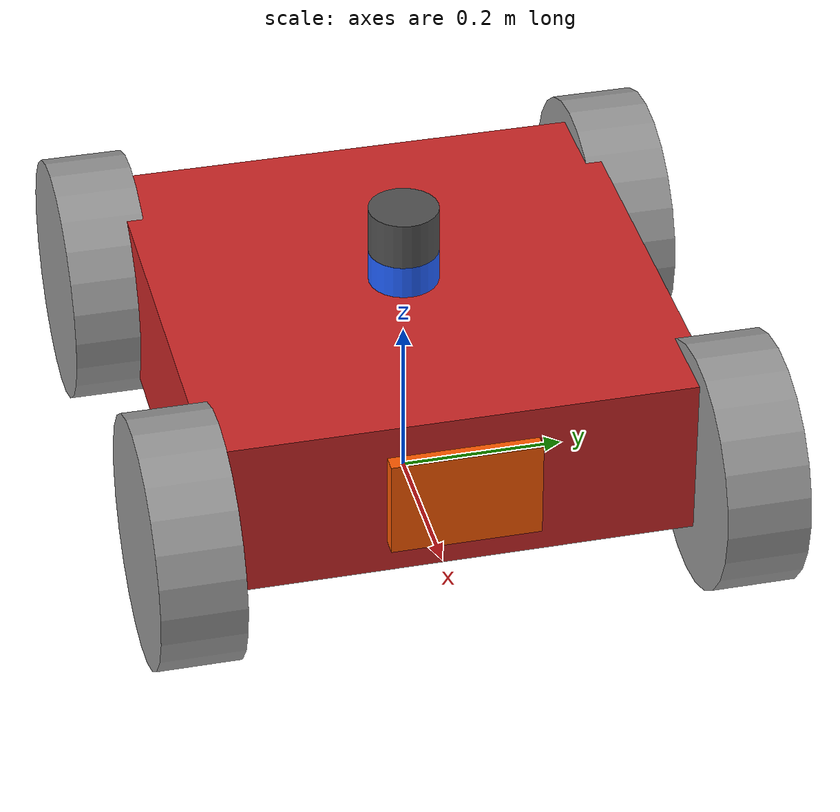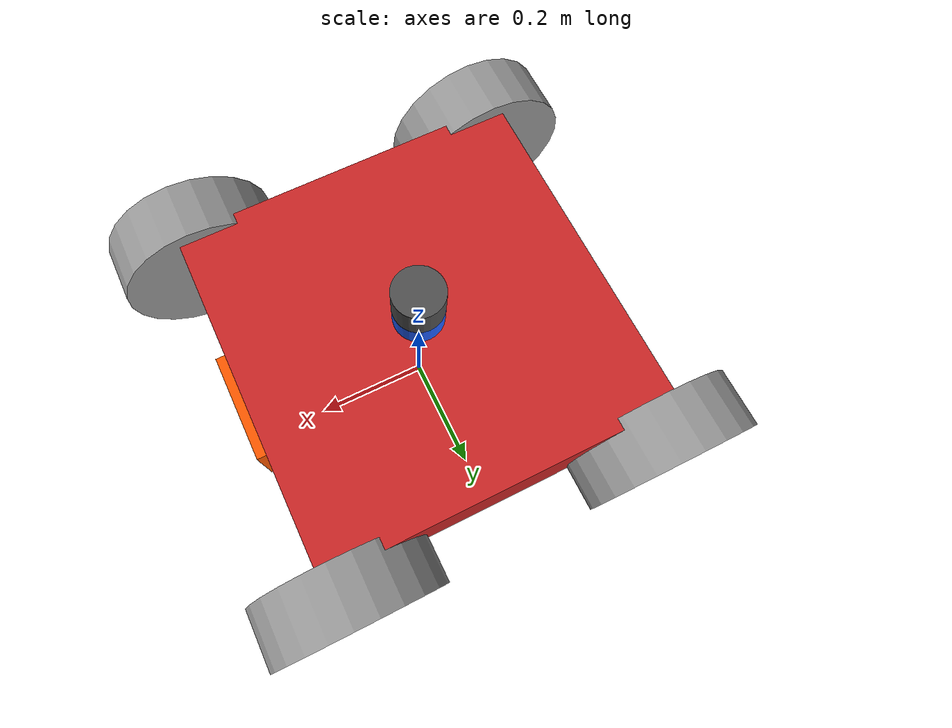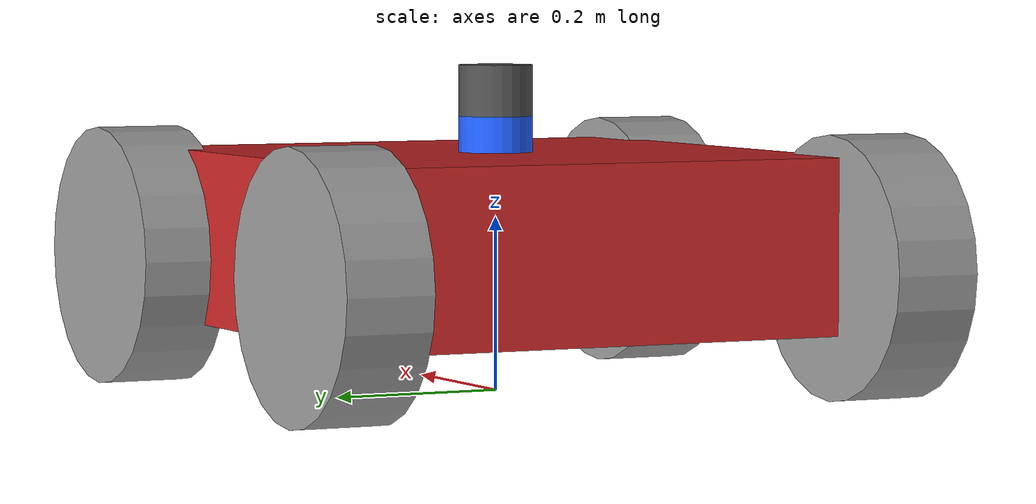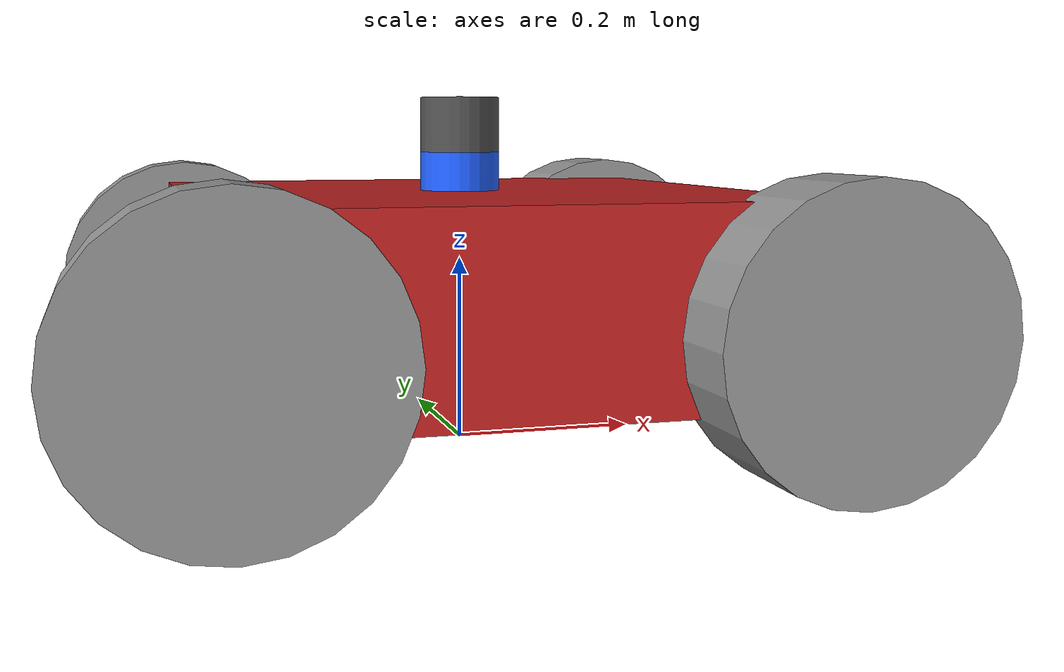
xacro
<?xml version="1.0"?>
<!-- Ember_Robot_Sim 1.0                                 -->
<!-- URDF DESCRIPTION OF THE EMBER BOT                   -->
<!-- Author: Maison Gulyas | (250) 258 - 1736            -->
<!-- This URDF will be four a quadropod Robot with a LiDAR
    attatched to the front, this LiDAR can be used in both
    2D and 3D modes.

    *Note xacros are always in SI*
-->
<!--
Orientation:
    x -> Forward
    y -> Left
    z -> Up
-->

<robot name="ember_bot" xmlns:xacro="http://www.ros.org/wiki/xacro">

<!--            Geometry & Constants                     -->
<!--            MARK: G & C                              -->

<!-- Body Dimensions -->
<xacro:property name="bl" value="0.60"/>   <!-- body length (X) -->
<xacro:property name="bw" value="0.60"/>   <!-- body width  (Y) -->
<xacro:property name="bh" value="0.20"/>   <!-- body height (Z) -->

<!--            Location Setup                           -->
<!--            MARK: LOCO                               -->

<!--            Wheel Axle Placement (X axis)            -->

<!-- Body Z placement above ground (simple + stable version) -->
<!-- 0.15 is from the wheel radius -->
<xacro:property name="body_z_from_ground" value="${ 0.15/2 + bh/2 }"/>

<!--            Include Additional Files              -->
<!--            MARK: File Incl.                      -->

<xacro:include filename="main_parts/body.xacro"/>
<xacro:include filename="main_parts/wheels.xacro"/>
<xacro:include filename="sensors/SF45B_lidar/SF45B.xacro"/>
<xacro:include filename="sensors/FLIR_Lepton_ThermalCamera/FLIR_Lepton.xacro"/>
<xacro:include filename="sensors/IMU/imu.xacro"/>
<xacro:include filename="sensors/GPS/Embr_GPS.xacro"/>

<xacro:imu_sensor
  parent_link="body_link"
  imu_name="imu_sensor"
  topic="imu"
  update_rate="100" />

<xacro:gps_sensor
    parent_link="body_link"
    gps_name="gps_sensor"
    topic="gps/fix"
    update_rate="1" />

<!-- MARK: LINKS, JOINTS HERE                         -->

</robot>

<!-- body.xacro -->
<!-- Ember_Robot_Sim 1.0                                 -->
<!-- URDF DESCRIPTION OF THE EMBER BOT                   -->
<!-- Author: Maison Gulyas | (250) 258 - 1736            -->

<robot name="ember_bot" xmlns:xacro="http://www.ros.org/wiki/xacro">

<!--                  Mass & Inertia                     -->
<!--                  MARK: M & I                        -->

<!-- Density -->
<xacro:property name="body_density" value="2710.0"/>  <!-- body -->

<!-- Mass -->
<xacro:property name="body_mass" value="${body_density*bl*bh*bw}"/>

<!-- Body inertia -->
<xacro:property name="Ix_body" value="${(1.0/12.0)*body_mass*(bh*bh + bw*bw)}"/>
<xacro:property name="Iy_body" value="${(1.0/12.0)*body_mass*(bl*bl + bh*bh)}"/>
<xacro:property name="Iz_body" value="${(1.0/12.0)*body_mass*(bl*bl + bw*bw)}"/>

<xacro:macro name="inertia_body">
  <inertial>
    <mass value="${body_mass}"/>
    <inertia ixx="${Ix_body}" ixy="0" ixz="0"
             iyy="${Iy_body}" iyz="0"
             izz="${Iz_body}"/>
  </inertial>
</xacro:macro>

<!-- Base footprint + fixed joint   -->

<link name="base_footprint"/>

<joint name="body_link_joint" type="fixed">
  <parent link="base_footprint"/>
  <child link="body_link"/>
</joint>

<!--            Include Additional Files              -->
<!--            MARK: File Incl.                      -->

<xacro:include filename="body.gazebo"/>

<!-- Body link                      -->

<link name="body_link">
  <visual name="body_visual">
    <origin rpy="0 0 0" xyz="0 0 ${body_z_from_ground}"/>
    <!-- URDF expects box size = x y z, so do ${bl} ${bw} ${bh}. -->
    <geometry>
      <box size="${bl} ${bw} ${bh}"/>
    </geometry>
  </visual>

  <collision name="body_collision">
    <origin rpy="0 0 0" xyz="0 0 ${body_z_from_ground}"/>
    <geometry>
      <box size="${bl} ${bw} ${bh}"/>
    </geometry>
  </collision>

  <xacro:inertia_body/>
</link>
</robot>

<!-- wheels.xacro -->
<!-- Ember_Robot_Sim 1.0                                 -->
<!-- URDF DESCRIPTION OF THE EMBER BOT                   -->
<!-- Author: Maison Gulyas | (250) 258 - 1736            -->

<robot name="ember_bot" xmlns:xacro="http://www.ros.org/wiki/xacro">

<!--            Geometry & Constants                     -->
<!--            MARK: G & C                              -->

<!-- Useful Constants -->
<xacro:property name="pi_const" value="3.14159265"/>

<!-- Wheel Dimensions -->
<xacro:property name="r" value="0.15"/>  <!-- Radius -->
<xacro:property name="w" value="0.10"/>  <!-- Width  -->

<!-- Left/right wheel COM Y placement -->
<xacro:property name="wheel_com_y" value="${w/2}"/>

<!-- Keep wheel axles slightly inside the body ends -->
<xacro:property name="wheel_axle_margin" value="0.02"/>

<!-- Front/Rear wheel axle X positions (relative to body center) -->
<xacro:property name="wheel_axle_y" value="${ bl/2 - wheel_axle_margin }"/>

<!--                  Mass & Inertia                     -->
<!--                  MARK: M & I                        -->

<!-- Density -->
<xacro:property name="wheel_density" value="2710.0"/>

<!-- Mass -->
<xacro:property name="wheel_mass" value="${wheel_density*pi_const*r*r*w}"/>

<!-- Wheel inertia -->
<xacro:property name="Iz_wheel" value="${0.5*wheel_mass*r*r}"/>
<xacro:property name="I_wheel" value="${(1.0/12.0)*wheel_mass*(3.0*r*r + w*w)}"/>

<!-- Inertia macros -->

<xacro:macro name="inertia_wheel">
    <inertial>
        <origin rpy="${pi_const/2} 0 0" xyz="0 0 0"/>
        <mass value="${wheel_mass}"/>
        <inertia ixx="${I_wheel}" ixy="0" ixz="0" iyy="${I_wheel}" iyz="0" izz="${Iz_wheel}"/>
    </inertial>
</xacro:macro>

<!--            Include Additional Files              -->
<!--            MARK: File Incl.                      -->

<xacro:include filename="wheels.gazebo"/>

<!-- MARK: LINKS, JOINTS HERE                        -->

<!-- START: Front Left Wheel of the Robot + Joint      -->

<joint name="front_left_wheel_joint" type="continuous">
    <parent link="body_link"/>
    <child link="flw_link"/>
    <origin xyz="${wheel_axle_y} ${wheel_com_y} ${r}" rpy="0 0 0"/>
    <axis xyz="0 1 0"/>
</joint>

<link name="flw_link">
    <visual>
        <origin xyz="0 ${wheel_axle_y} 0" rpy="${pi_const/2} 0 0"/>
        <geometry><cylinder radius="${r}" length="${w}"/></geometry>
    </visual>

    <collision>
        <origin xyz="0 ${wheel_axle_y} 0" rpy="${pi_const/2} 0 0"/>
        <geometry><cylinder radius="${r}" length="${w}"/></geometry>
    </collision>

    <xacro:inertia_wheel/>
</link>

<!-- END: Front Left wheel                             -->

<!-- START: Front Right wheel of the Robot + Joint     -->

<joint name="front_right_wheel_joint" type="continuous">
    <parent link="body_link"/>
    <child link="frw_link"/>
    <origin xyz="${wheel_axle_y} ${-wheel_com_y} ${r}" rpy="0 0 0"/>
    <axis xyz="0 1 0"/>
</joint>

<link name="frw_link">
    <visual>
        <origin xyz="0 ${-wheel_axle_y} 0" rpy="${pi_const/2} 0 0"/>
        <geometry><cylinder radius="${r}" length="${w}"/></geometry>
    </visual>

    <collision>
        <origin xyz="0 ${-wheel_axle_y} 0" rpy="${pi_const/2} 0 0"/>
        <geometry><cylinder radius="${r}" length="${w}"/></geometry>
    </collision>

    <xacro:inertia_wheel/>
</link>

<!-- END: Front Right Wheel                            -->

<!-- START: Back Left Wheel of the Robot + Joint       -->

<joint name="back_left_wheel_joint" type="continuous">
    <parent link="body_link"/>
    <child link="blw_link"/>
    <origin xyz="${-wheel_axle_y} ${wheel_com_y} ${r}" rpy="0 0 0"/>
    <axis xyz="0 1 0"/>
</joint>

<link name="blw_link">
    <visual>
        <origin xyz="0 ${wheel_axle_y} 0" rpy="${pi_const/2} 0 0"/>
        <geometry><cylinder radius="${r}" length="${w}"/></geometry>
    </visual>

    <collision>
        <origin xyz="0 ${wheel_axle_y} 0" rpy="${pi_const/2} 0 0"/>
        <geometry><cylinder radius="${r}" length="${w}"/></geometry>
    </collision>

    <xacro:inertia_wheel/>
</link>

<!-- END: Back Left Wheel                              -->

<!-- START: Back Right Wheel of the Robot + Joint       -->

<joint name="back_right_wheel_joint" type="continuous">
    <parent link="body_link"/>
    <child link="brw_link"/>
    <origin xyz="${-wheel_axle_y} ${-wheel_com_y} ${r}" rpy="0 0 0"/>
    <axis xyz="0 1 0"/>
</joint>

<link name="brw_link">
    <visual>
        <origin xyz="0 ${-wheel_axle_y} 0" rpy="${pi_const/2} 0 0"/>
        <geometry><cylinder radius="${r}" length="${w}"/></geometry>
    </visual>

    <collision>
        <origin xyz="0 ${-wheel_axle_y} 0" rpy="${pi_const/2} 0 0"/>
        <geometry><cylinder radius="${r}" length="${w}"/></geometry>
    </collision>

    <xacro:inertia_wheel/>
</link>

<!-- END: Back Right Wheel                              -->

</robot>

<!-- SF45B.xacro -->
<robot xmlns:xacro="http://www.ros.org/wiki/xacro" name="SF45B_lidar">

  <!-- Bring in the gazebo sensor macro -->
  <xacro:include filename="SF45B.gazebo"/>

  <xacro:macro name="SF45B_lidar" params="parent xyz rpy sf45b_height">

    <!-- Base link -->
    <link name="sf45b_base">
      <inertial>
        <origin xyz="0 0 0.029335" rpy="0 0 0"/>
        <mass value="1.2"/>
        <inertia ixx="0.001087473" ixy="0" ixz="0"
                 iyy="0.001087473" iyz="0"
                 izz="0.001092437"/>
      </inertial>

      <collision name="base_collision">
        <origin xyz="0 0 0.029335" rpy="0 0 0"/>
        <geometry>
          <cylinder radius="0.04267" length="${sf45b_height}"/>
        </geometry>
      </collision>

      <visual name="base_visual">
        <origin xyz="0 0 0.029335" rpy="0 0 0"/>
        <geometry>
          <cylinder radius="0.04267" length="${sf45b_height}"/>
        </geometry>
        <material name="SF45B_Blue">
          <color rgba="0.125 0.37500003 1 1"/>
        </material>
      </visual>
    </link>

    <!-- Top link -->
    <link name="sf45b_top">
      <inertial>
        <origin xyz="0 0 0" rpy="0 0 0"/>
        <mass value="0.1"/>
        <inertia ixx="9.0623e-05" ixy="0" ixz="0"
                 iyy="9.0623e-05" iyz="0"
                 izz="9.1036e-05"/>
      </inertial>

      <collision name="top_collision">
        <origin xyz="0 0 0" rpy="0 0 0"/>
        <geometry>
          <cylinder radius="0.04267" length="${sf45b_height}"/>
        </geometry>
      </collision>

      <visual name="top_visual">
        <origin xyz="0 0 0" rpy="0 0 0"/>
        <geometry>
          <cylinder radius="0.04267" length="${sf45b_height}"/>
        </geometry>
        <material name="SF45B_Grey">
          <color rgba="0.3125 0.3125 0.3125 1"/>
        </material>
      </visual>
    </link>

    <!-- Mount joint -->
    <joint name="sf45b_mount" type="fixed">
      <parent link="${parent}"/>
      <child link="sf45b_base"/>
      <origin xyz="${xyz}" rpy="${rpy}"/>
    </joint>

    <!-- Spin joint -->
    <joint name="sf45b_joint" type="continuous">
      <parent link="sf45b_base"/>
      <child link="sf45b_top"/>
      <origin xyz="0 0 0.088005" rpy="0 0 0"/>
      <axis xyz="0 0 1"/>
      <limit effort="10" velocity="6.28"/>
      <dynamics damping="0" friction="0"/>
    </joint>

    <!-- Attach the Gazebo sensor to sf45b_top -->
    <xacro:SF45B_lidar_gazebo topic="scan" update_rate="10" visualize="true"/>

  </xacro:macro>

  <!-- Instantiate -->
  <xacro:property name="sf45b_height" value="0.05867"/>
  <xacro:SF45B_lidar
      parent="body_link"
      xyz="0 0 ${body_z_from_ground + bh - (2 * sf45b_height)}"
      rpy="0 0 0"
      sf45b_height="${sf45b_height}"/>

</robot>

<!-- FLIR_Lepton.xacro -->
<robot xmlns:xacro="http://www.ros.org/wiki/xacro" name="FLIR_Lepton_Thermal">

  <!-- Bring in the gazebo sensor macro -->
  <xacro:include filename="FLIR_Lepton.gazebo"/>

  <xacro:macro name="FLIR_Thermal" params="parent xyz rpy panel_t panel_w panel_h">

    <!-- Physical link -->
    <link name="thermal_camera">
      <inertial>
        <origin xyz="0 0 0" rpy="0 0 0"/>
        <mass value="0.2"/>
        <inertia ixx="0.001087473" ixy="0" ixz="0"
                iyy="0.001087473" iyz="0"
                izz="0.001092437"/>
      </inertial>

      <collision name="base_collision">
        <geometry>
          <box size="${panel_t} ${panel_w} ${panel_h}"/>
        </geometry>
      </collision>

      <!-- URDF visual (RViz only, mostly ignored by Ignition (Gazebo Version == Harmonic+)) -->
      <visual name="thermal_visual">
        <geometry>
          <box size="${panel_t} ${panel_w} ${panel_h}"/>
        </geometry>
        <material name="Thermal_Orange">
          <color rgba="1 0.35 0 1"/>
        </material>
      </visual>
    </link>

    <!-- (Ignition visual) -->
    <gazebo reference="thermal_camera">
      <visual>
        <geometry>
          <box>
            <size>0.4 0.4 0.4</size>
          </box>
        </geometry>
        <material>
          <ambient>1 0.2 0 1</ambient>
          <diffuse>1 0.2 0 1</diffuse>
        </material>
      </visual>
    </gazebo>

    <!-- Mount joint -->
    <joint name="thermal_mount" type="fixed">
      <parent link="${parent}"/>
      <child link="thermal_camera"/>
      <origin xyz="${xyz}" rpy="${rpy}"/>
    </joint>

    <!-- Thermal sensor -->
    <xacro:FLIR_thermal_gazebo
      topic="thermal_camera_8bit/image"
      update_rate="30"
      visualize="true"/>

  </xacro:macro>
  <!-- Panel dimensions -->
  <xacro:property name="panel_t" value="0.02"/>   <!-- thickness (x) -->
  <xacro:property name="panel_w" value="0.18"/>   <!-- width (y) -->
  <xacro:property name="panel_h" value="0.12"/>   <!-- height (z) -->

  <xacro:FLIR_Thermal
    parent="body_link"
    xyz="${bl/2 + panel_t/2} 0 ${body_z_from_ground}"
    rpy="0 0 0"
    panel_t="${panel_t}"
    panel_w="${panel_w}"
    panel_h="${panel_h}"/>

</robot>
